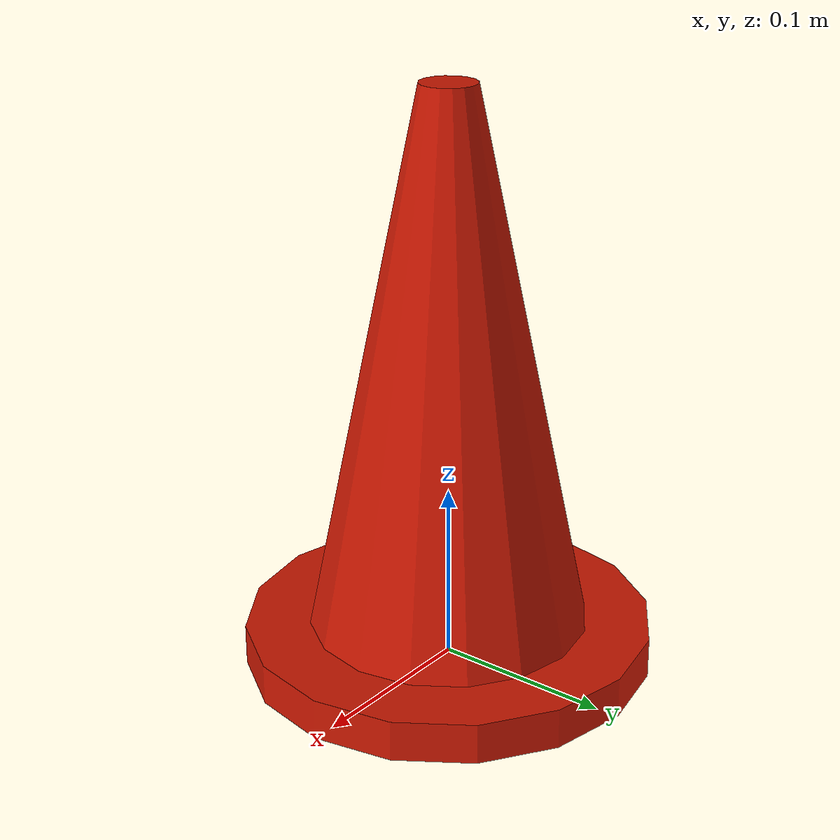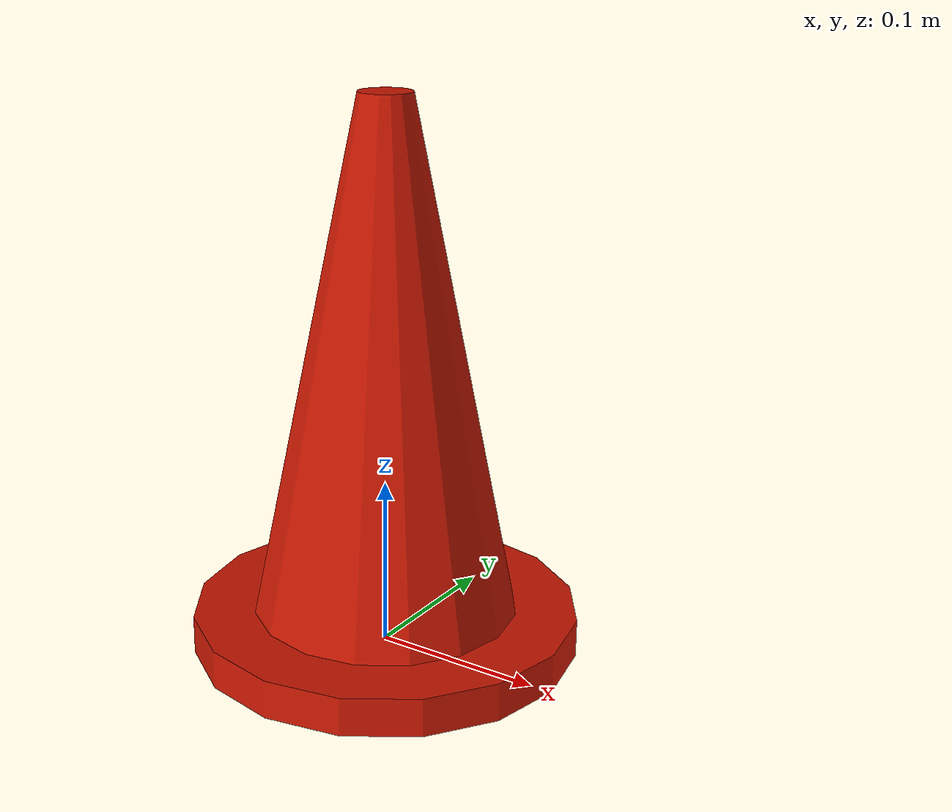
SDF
<?xml version="1.0"?>
<sdf version="1.4">
<model name="cone_orange">
    <link name="link">
      <collision name="collision">
        <geometry>
          <mesh>
            <uri>/home/christos/.gazebo/models/orange_cone/orange_cone.dae</uri>
              <scale>1 1 1</scale>
          </mesh>
        </geometry>
      </collision>
      <visual name="visual">
        <geometry>
          <mesh>
            <uri>/home/christos/.gazebo/models/orange_cone/orange_cone.dae</uri>
            <scale>1 1 1</scale>
          </mesh>
        </geometry>
      </visual>
    </link>
  </model>
</sdf>
